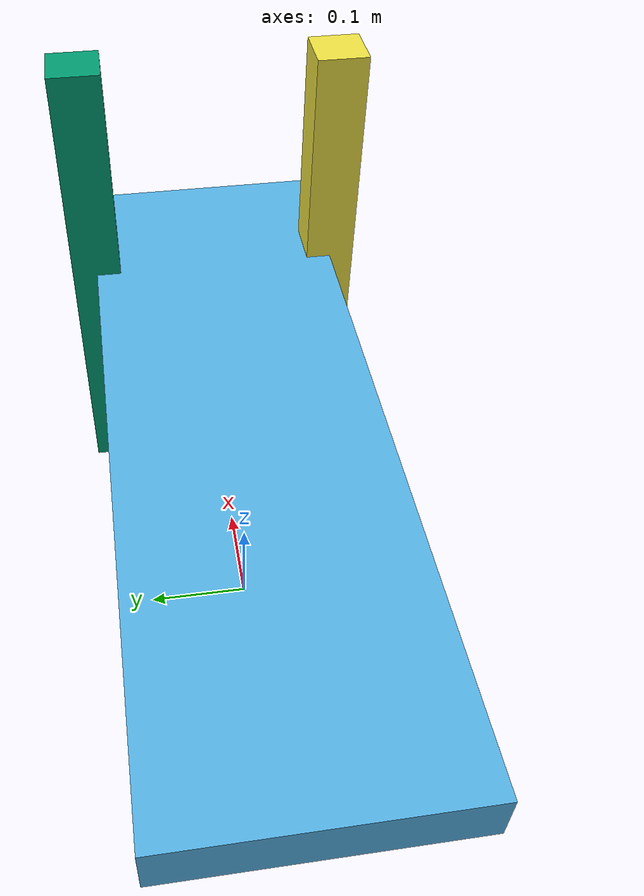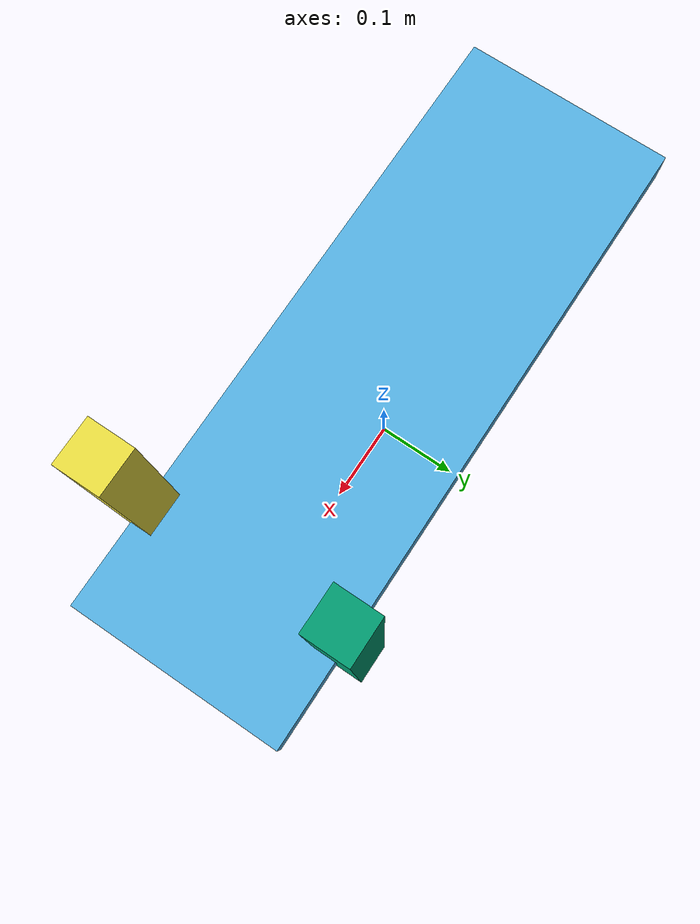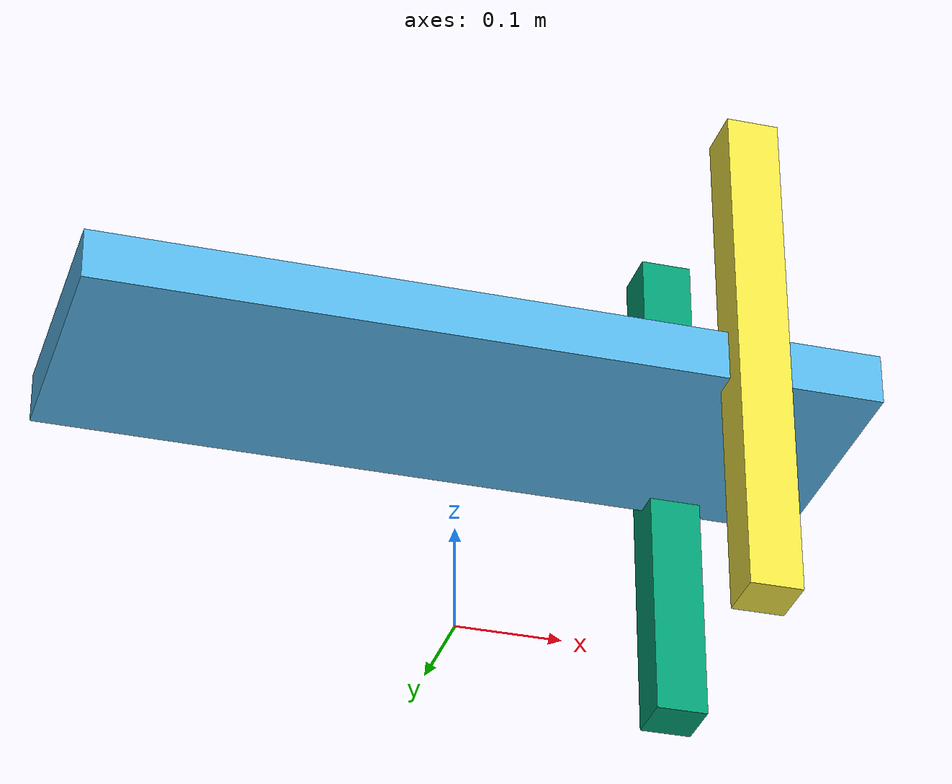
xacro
<?xml version="1.0"?>
<robot name="dog" xmlns:xacro="http://ros.org/wiki/xacro">

<xacro:property name="width"  value="0.05"/>
<xacro:property name="height" value="0.05"/>
<xacro:property name="size"   value="0.5"/>

   <material name="red">
      <color rgba="1.0 0.0 0.0 2.0"/>
   </material>

   <link name="base_link"/>

   <link name="body">
      <visual>
         <geometry>
            <box size="${1.5*size} ${5*width} ${height}"/>
         </geometry>
         <origin xyz="0 0 ${size/2}" rpy="0 0 0"/>
      </visual>
   </link>
   <joint name="body" type="fixed">
      <parent link="base_link"/>
      <child  link="body"/>
   </joint>

   <link name="leg_lf">
      <visual>
         <geometry>
            <box size="${size} ${width} ${height}"/>
         </geometry>
         <origin  xyz="${1.5*size*1/3} ${5*width/2} ${size/2}" rpy="0 ${radians(90)} 0"/>
      </visual>
   </link>

   <link name="leg_rf">
      <visual>
         <geometry>
            <box size="${size} ${width} ${height}"/>
         </geometry>
         <origin  xyz="${1.5*size*1/3} ${-5*width/2} ${size/2}" rpy="0 ${radians(90)} 0"/>
      </visual>
   </link>

   <joint name="lf" type="revolute">
      <parent link="body"/>
      <child  link="leg_lf"/>
      <origin xyz="0 0 0"/>
      <limit  lower="-1.5" upper="1.5" effort="0" velocity="0"/>
   </joint>

   <joint name="rf" type="revolute">
      <parent link="body"/>
      <child  link="leg_rf"/>
      <origin xyz="0 0 0"/>
      <limit  lower="-1.5" upper="1.5" effort="0" velocity="0"/>
   </joint>

</robot>
